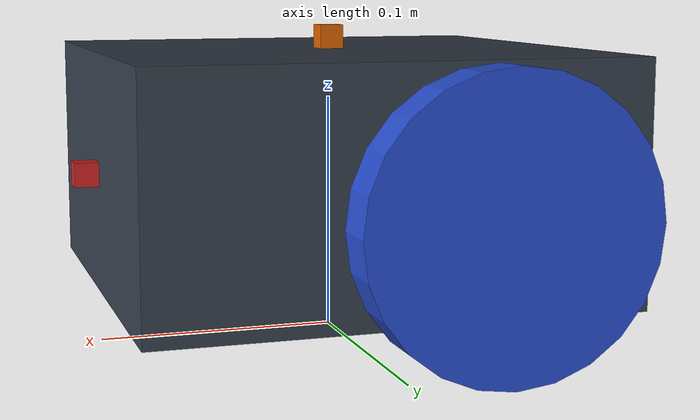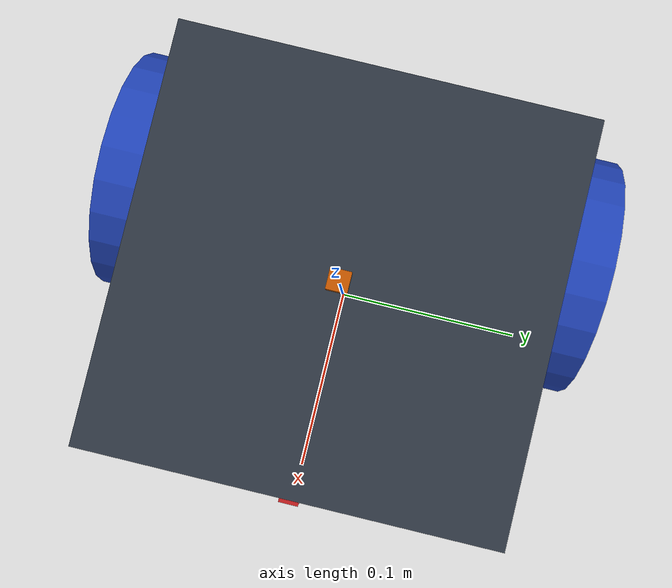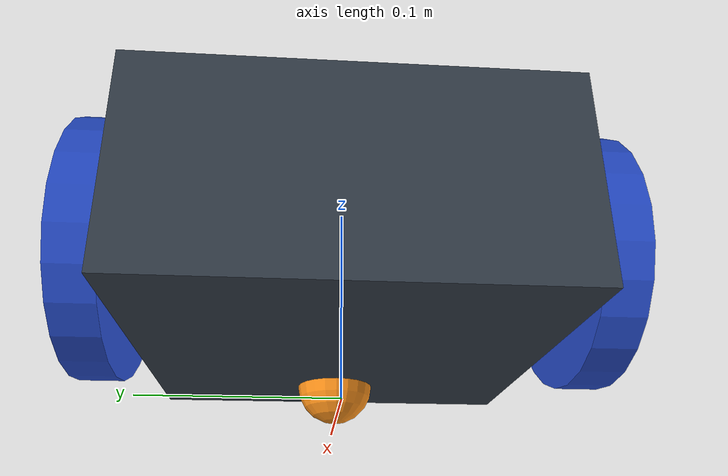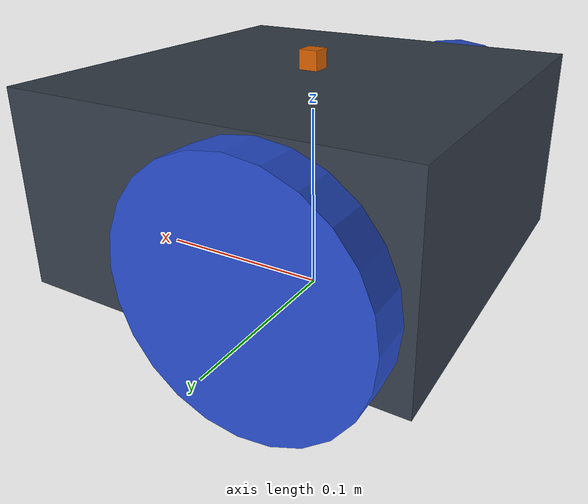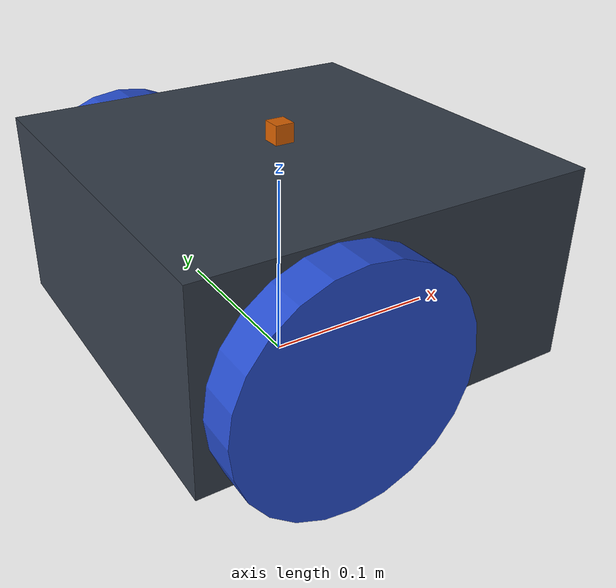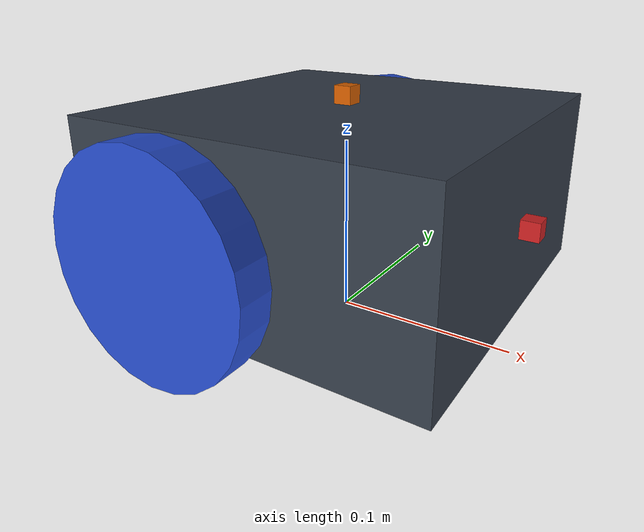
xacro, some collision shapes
<?xml version="1.0" ?>
<robot name="manas_bot" xmlns:xacro="http://www.ros.org/wiki/xacro">
  <material name="black">
    <color rgba="0.0 0.0 0.0 1.0"/>
  </material>
  <material name="blue">
    <color rgba="0.203125 0.23828125 0.28515625 1.0"/>
  </material>
  <material name="green">
    <color rgba="0.0 0.8 0.0 1.0"/>
  </material>
  <material name="grey">
    <color rgba="0.2 0.2 0.2 1.0"/>
  </material>
  <material name="orange">
    <color rgba="1.0 0.423529411765 0.0392156862745 1.0"/>
  </material>
  <material name="brown">
    <color rgba="0.870588235294 0.811764705882 0.764705882353 1.0"/>
  </material>
  <material name="red">
    <color rgba="0.80078125 0.12890625 0.1328125 1.0"/>
  </material>
  <material name="white">
    <color rgba="1.0 1.0 1.0 1.0"/>
  </material>

  <gazebo reference="link_chassis">
    <material>Gazebo/Orange</material>
  </gazebo>
  <gazebo reference="link_left_wheel">
    <material>Gazebo/Blue</material>
  </gazebo>
  <gazebo reference="link_right_wheel">
    <material>Gazebo/Blue</material>
  </gazebo>

  <xacro:property name="camera_link" value="0.01" /> <!-- Size of square 'camera' box -->

<link name="robot_footprint"></link>

<joint name="robot_footprint_joint" type="fixed">
		<origin xyz="0 0 0" rpy="0 0 0" />
		<parent link="robot_footprint"/>
		<child link="link_chassis" />
	</joint>

  <link name="link_chassis">
    <!-- pose and inertial -->
    <pose>0 0 -0.05 0 0 0</pose>
    <inertial>
      <mass value="5"/>
      <origin rpy="0 0 0" xyz="0 0 0.0"/>
      <inertia ixx="0.020833333" ixy="0" ixz="0" iyy="0.033333333" iyz="0" izz="0.020833333"/>
    </inertial>
    <!-- body -->
    <collision name="collision_chassis">
      <geometry>
        <box size="0.2 0.2 0.1"/>
      </geometry>
    </collision>
    <visual>
      <origin rpy="0 0 0" xyz="0 0 0.071"/>
      <geometry>
        <box size="0.2 0.2 0.1"/>
      </geometry>
      <material name="blue"/>
    </visual>
    <!-- caster front -->
    <collision name="caster_front_collision">
      <origin rpy=" 0 0 0" xyz="0.061 0 0.021"/>
      <geometry>
        <sphere radius="0.021"/>
      </geometry>
      <surface>
        <friction>
          <ode>
            <mu>0</mu>
            <mu2>0</mu2>
            <slip1>1.0</slip1>
            <slip2>1.0</slip2>
          </ode>
        </friction>
      </surface>
    </collision>
    <visual name="caster_front_visual">
      <origin rpy=" 0 0 0" xyz="0.061 0 0.021"/>
      <geometry>
        <sphere radius="0.021"/>
      </geometry>
    </visual>
  </link>

  <link name="link_right_wheel">
    <inertial>
      <mass value="0.2"/>
      <origin rpy="0 1.5707 1.5707" xyz="0 0 0"/>
      <inertia ixx="0.000186667" ixy="0" ixz="0" iyy="0.000186667" iyz="0" izz="0.00036"/>
    </inertial>
    <collision name="link_right_wheel_collision">
      <origin rpy="0 1.5707 1.5707" xyz="0 0 0"/>
      <geometry>
        <cylinder length="0.02" radius="0.06"/>
      </geometry>
    </collision>
    <visual name="link_right_wheel_visual">
      <origin rpy="0 1.5707 1.5707" xyz="0 0 0"/>
      <geometry>
        <cylinder length="0.02" radius="0.06"/>
      </geometry>
    </visual>
  </link>

  <joint name="joint_right_wheel" type="continuous">
    <origin rpy="0 0 0" xyz="-0.035 -0.11 0.06"/>
    <child link="link_right_wheel"/>
    <parent link="link_chassis"/>
    <axis rpy="0 0 0" xyz="0 1 0"/>
    <limit effort="10000" velocity="1000"/>
    <joint_properties damping="1.0" friction="1.0"/>
  </joint>

  <link name="link_left_wheel">
    <inertial>
      <mass value="0.2"/>
      <origin rpy="0 1.5707 1.5707" xyz="0 0 0"/>
      <inertia ixx="0.000186667" ixy="0" ixz="0" iyy="0.000186667" iyz="0" izz="0.00036"/>
    </inertial>
    <collision name="link_left_wheel_collision">
      <origin rpy="0 1.5707 1.5707" xyz="0 0 0"/>
      <geometry>
        <cylinder length="0.02" radius="0.06"/>
      </geometry>
    </collision>
    <visual name="link_left_wheel_visual">
      <origin rpy="0 1.5707 1.5707" xyz="0 0 0"/>
      <geometry>
        <cylinder length="0.02" radius="0.06"/>
      </geometry>
    </visual>
  </link>

  <joint name="joint_left_wheel" type="continuous">
    <origin rpy="0 0 0" xyz="-0.035 0.11 0.06"/>
    <child link="link_left_wheel"/>
    <parent link="link_chassis"/>
    <axis rpy="0 0 0" xyz="0 1 0"/>
    <limit effort="10000" velocity="1000"/>
    <joint_properties damping="1.0" friction="1.0"/>
  </joint>

<joint name="camera_joint" type="fixed">
    <axis xyz="0 1 0" />
    <origin xyz="0.105 0 0.071" rpy="0 0 0"/>
    <parent link="link_chassis"/>
    <child link="camera_link"/>
  </joint>

  <!-- Camera -->
  <link name="camera_link">
    <collision>
      <origin xyz="0 0 0" rpy="0 0 0"/>
      <geometry>
    <box size="${camera_link} ${camera_link} ${camera_link}"/>
      </geometry>
    </collision>

    <visual>
      <origin xyz="0 0 0" rpy="0 0 0"/>
      <geometry>
    <box size="${camera_link} ${camera_link} ${camera_link}"/>
      </geometry>
      <material name="red"/>
    </visual>

    <inertial>
      <mass value="1e-5" />
      <origin xyz="0 0 0" rpy="0 0 0"/>
      <inertia ixx="1e-6" ixy="0" ixz="0" iyy="1e-6" iyz="0" izz="1e-6" />
    </inertial>
  </link>

  <joint name="hokuyo_joint" type="fixed">
    <axis xyz="0 1 0" />
    <origin xyz="0 0 0.126" rpy="0 0 0"/>
    <parent link="link_chassis"/>
    <child link="hokuyo_link"/>
  </joint>

  <link name="hokuyo_link">
    <collision>
      <origin xyz="0 0 0" rpy="0 0 0"/>
      <geometry>
    <box size="0.01 0.01 0.01"/>
      </geometry>
    </collision>

    <visual>
      <origin xyz="0 0 0" rpy="0 0 0"/>
      <geometry>
        <mesh filename="package://bot_description/meshes/hokuyo.dae"/>
      </geometry>
    </visual>

    <inertial>
      <mass value="1e-5" />
      <origin xyz="0 0 0" rpy="0 0 0"/>
      <inertia ixx="1e-6" ixy="0" ixz="0" iyy="1e-6" iyz="0" izz="1e-6" />
    </inertial>
  </link>

<gazebo reference="hokuyo_link">
    <sensor type="ray" name="head_hokuyo_sensor">
      <pose>0 0 0 0 0 0</pose>
      <visualize>false</visualize>
      <update_rate>40</update_rate>
      <ray>
        <scan>
          <horizontal>
            <samples>360</samples>
            <resolution>1</resolution>
            <min_angle>-3.14</min_angle>
            <max_angle>3.14</max_angle>
          </horizontal>
        </scan>
        <range>
          <min>0.10</min>
          <max>30.0</max>
          <resolution>0.01</resolution>
        </range>
        <noise>
          <type>gaussian</type>
          <mean>0.0</mean>
          <stddev>0.01</stddev>
        </noise>
      </ray>
      <plugin name="gazebo_ros_head_hokuyo_controller" filename="libgazebo_ros_laser.so">
        <topicName>/scan</topicName>
        <frameName>hokuyo_link</frameName>
      </plugin>
    </sensor>
  </gazebo>

  <gazebo>
    <plugin filename="libgazebo_ros_diff_drive.so" name="differential_drive_controller">
      <legacyMode>false</legacyMode>
      <updateRate>20</updateRate>
      <leftJoint>joint_left_wheel</leftJoint>
      <rightJoint>joint_right_wheel</rightJoint>
      <wheelSeparation>0.22</wheelSeparation>
      <wheelDiameter>0.12</wheelDiameter>
      <wheelTorque>0.1</wheelTorque>
      <commandTopic>cmd_vel</commandTopic>
      <odometryTopic>odom</odometryTopic>
      <odometryFrame>odom</odometryFrame>
      <robotBaseFrame>robot_footprint</robotBaseFrame>
    </plugin>
  </gazebo>
    <!-- camera -->
  <gazebo reference="camera_link">
    <sensor type="camera" name="camera1">
      <update_rate>30.0</update_rate>
      <camera name="head">
        <horizontal_fov>1.3962634</horizontal_fov>
        <image>
          <width>800</width>
          <height>800</height>
          <format>R8G8B8</format>
        </image>
        <clip>
          <near>0.02</near>
          <far>300</far>
        </clip>
        <noise>
          <type>gaussian</type>
          <!-- Noise is sampled independently per pixel on each frame.
               That pixel's noise value is added to each of its color
               channels, which at that point lie in the range [0,1]. -->
          <mean>0.0</mean>
          <stddev>0.007</stddev>
        </noise>
      </camera>
      <plugin name="camera_controller" filename="libgazebo_ros_camera.so">
        <alwaysOn>true</alwaysOn>
        <updateRate>0.0</updateRate>
        <cameraName>camera_bot</cameraName>
        <imageTopicName>image</imageTopicName>
        <cameraInfoTopicName>camera_info</cameraInfoTopicName>
        <frameName>camera_link</frameName>
        <hackBaseline>0.07</hackBaseline>
        <distortionK1>0.0</distortionK1>
        <distortionK2>0.0</distortionK2>
        <distortionK3>0.0</distortionK3>
        <distortionT1>0.0</distortionT1>
        <distortionT2>0.0</distortionT2>
      </plugin>
    </sensor>
  </gazebo>

</robot>
